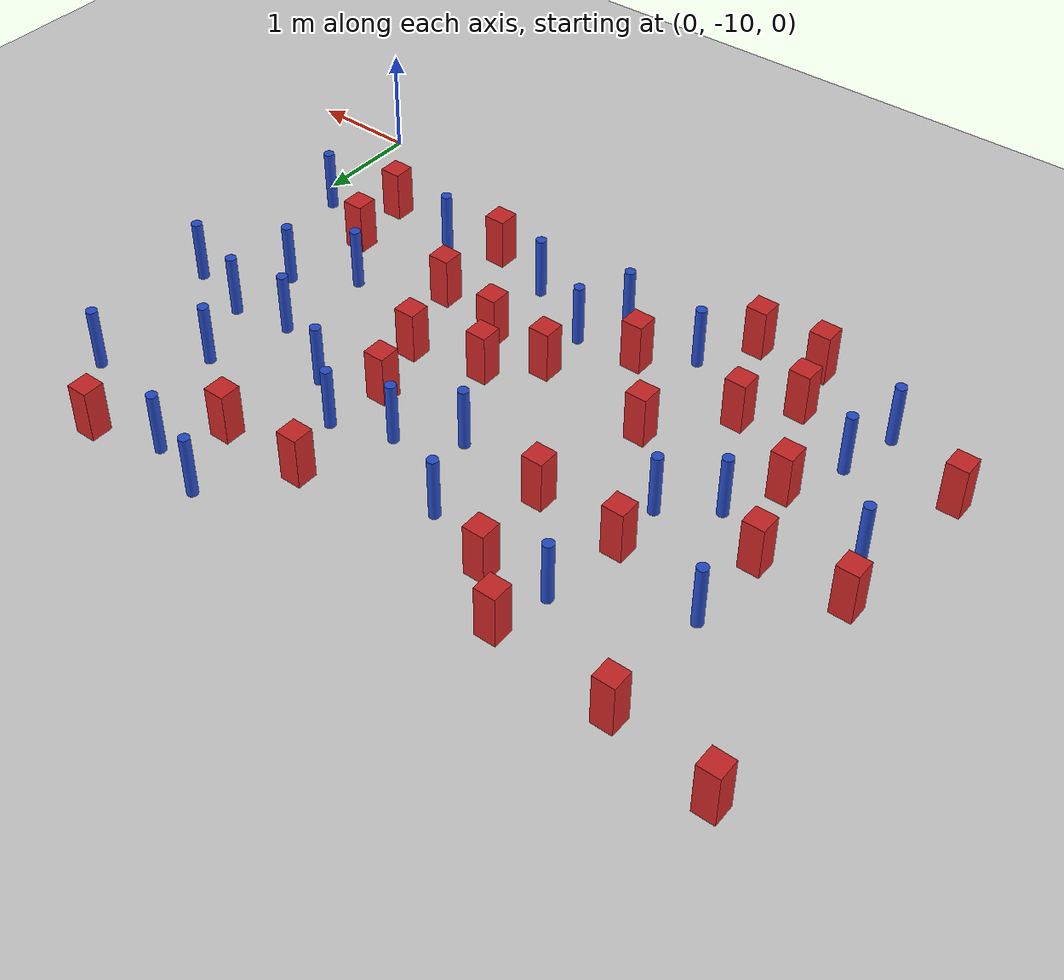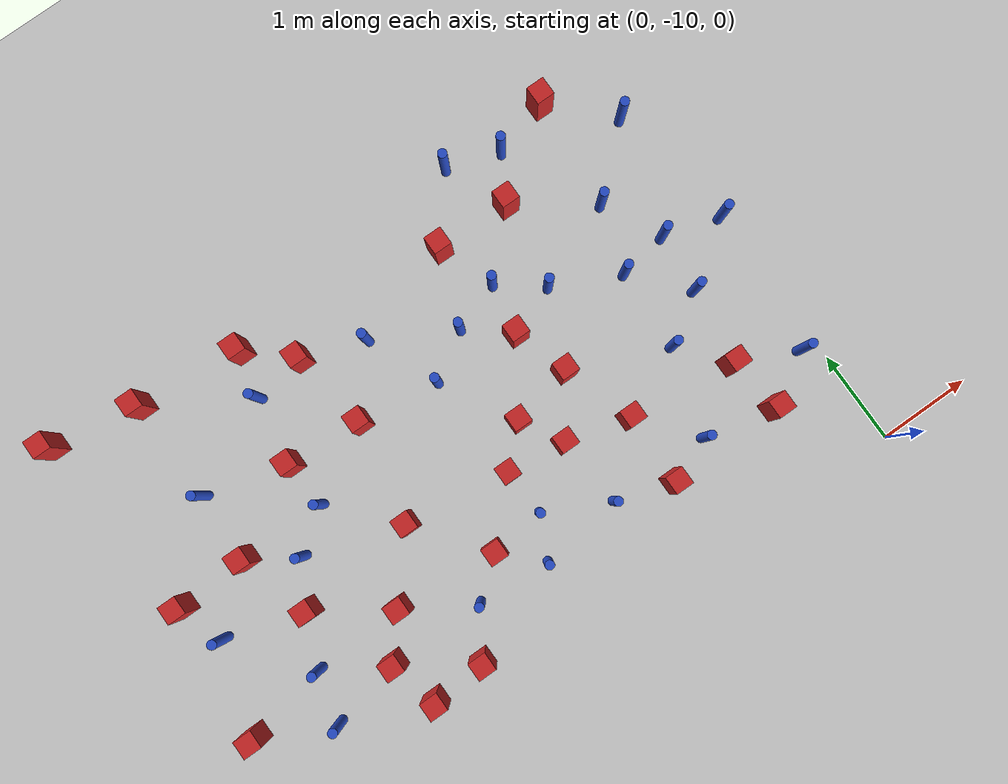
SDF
<sdf version="1.6">
 <world name="default">
  <model name="ground_plane">
   <static>1</static>
   <link name="link">
    <collision name="collision">
     <geometry><plane><normal>0 0 1</normal><size>100 100</size></plane></geometry>
     <surface><friction><ode><mu>100</mu><mu2>50</mu2></ode></friction></surface>
    </collision>
    <visual name="visual">
     <cast_shadows>0</cast_shadows>
     <geometry><plane><normal>0 0 1</normal><size>100 100</size></plane></geometry>
     <material>
      <ambient>1.0 1.0 1.0 1.0</ambient>
      <diffuse>0.8 0.8 0.8 1.0</diffuse>
      <specular>0.01 0.01 0.01 1.000000</specular>
     </material>
    </visual>
   </link>
  </model>
  <model name="square_post_obstacle6">
   <static>true</static>
   <pose>-0.892551065404 -5.12776510579 -7.80171244635e-07 7.17449752808e-06 -5.6639232126e-07 2.2715510512e-05</pose>
   <link name="link">
    <pose>0 0 0.25 0 -0 0</pose>
    <inertial>
     <mass>100</mass>
     <inertia>
      <ixx>0.166667</ixx>
      <ixy>0</ixy>
      <ixz>0</ixz>
      <iyy>0.166667</iyy>
      <iyz>0</iyz>
      <izz>0.166667</izz>
     </inertia>
    </inertial>
    <collision name="collision"><geometry><box><size>.2 .2 .5</size></box></geometry></collision>
    <visual name="visual">
     <geometry><box><size>.2 .2 .5</size></box></geometry>
     <material>
      <script><name>Gazebo/Red</name><uri>file://media/materials/scripts/gazebo.material</uri></script>
     </material>
    </visual>
   </link>
  </model>
  <model name="square_post_obstacle12">
   <static>true</static>
   <pose>-5.03160968618 -8.5285034943 -7.80171244635e-07 7.17449752808e-06 -5.6639232126e-07 2.2715510512e-05</pose>
   <link name="link">
    <pose>0 0 0.25 0 -0 0</pose>
    <inertial>
     <mass>100</mass>
     <inertia>
      <ixx>0.166667</ixx>
      <ixy>0</ixy>
      <ixz>0</ixz>
      <iyy>0.166667</iyy>
      <iyz>0</iyz>
      <izz>0.166667</izz>
     </inertia>
    </inertial>
    <collision name="collision"><geometry><box><size>.2 .2 .5</size></box></geometry></collision>
    <visual name="visual">
     <geometry><box><size>.2 .2 .5</size></box></geometry>
     <material>
      <script><name>Gazebo/Red</name><uri>file://media/materials/scripts/gazebo.material</uri></script>
     </material>
    </visual>
   </link>
  </model>
  <model name="pole_obstacle17">
   <static>true</static>
   <pose>-0.99536716631 -6.35708189024 -2.66029137441e-07 -5.69430205631e-07 6.84129966562e-07 -8.68349370782e-08</pose>
   <link name="link">
    <pose>0 0 0.3 0 -0 0</pose>
    <inertial>
     <mass>1</mass>
     <inertia><ixx>0.145833</ixx><ixy>0</ixy><ixz>0</ixz><iyy>0.145833</iyy><iyz>0</iyz><izz>0.125</izz></inertia>
    </inertial>
    <collision name="collision">
     <geometry><cylinder><radius>0.05</radius><length>.6</length></cylinder></geometry>
    </collision>
    <visual name="visual">
     <geometry><cylinder><radius>0.05</radius><length>.6</length></cylinder></geometry>
     <material>
      <script><name>Gazebo/Blue</name><uri>file://media/materials/scripts/gazebo.material</uri></script>
     </material>
    </visual>
   </link>
  </model>
  <model name="pole_obstacle19">
   <static>true</static>
   <pose>-2.92377861758 -6.58362115636 -2.66029137441e-07 -5.69430205635e-07 6.84129966557e-07 -8.68349370832e-08</pose>
   <link name="link">
    <pose>0 0 0.3 0 -0 0</pose>
    <inertial>
     <mass>1</mass>
     <inertia><ixx>0.145833</ixx><ixy>0</ixy><ixz>0</ixz><iyy>0.145833</iyy><iyz>0</iyz><izz>0.125</izz></inertia>
    </inertial>
    <collision name="collision">
     <geometry><cylinder><radius>0.05</radius><length>.6</length></cylinder></geometry>
    </collision>
    <visual name="visual">
     <geometry><cylinder><radius>0.05</radius><length>.6</length></cylinder></geometry>
     <material>
      <script><name>Gazebo/Blue</name><uri>file://media/materials/scripts/gazebo.material</uri></script>
     </material>
    </visual>
   </link>
  </model>
  <model name="pole_obstacle24">
   <static>true</static>
   <pose>-1.506349523 -5.30545802994 -2.66029137441e-07 -5.69430205635e-07 6.84129966557e-07 -8.68349370822e-08</pose>
   <link name="link">
    <pose>0 0 0.3 0 -0 0</pose>
    <inertial>
     <mass>1</mass>
     <inertia><ixx>0.145833</ixx><ixy>0</ixy><ixz>0</ixz><iyy>0.145833</iyy><iyz>0</iyz><izz>0.125</izz></inertia>
    </inertial>
    <collision name="collision">
     <geometry><cylinder><radius>0.05</radius><length>.6</length></cylinder></geometry>
    </collision>
    <visual name="visual">
     <geometry><cylinder><radius>0.05</radius><length>.6</length></cylinder></geometry>
     <material>
      <script><name>Gazebo/Blue</name><uri>file://media/materials/scripts/gazebo.material</uri></script>
     </material>
    </visual>
   </link>
  </model>
  <model name="pole_obstacle27">
   <static>true</static>
   <pose>-6.00216226382 -6.47632057488 -2.66029137441e-07 -5.69430205655e-07 6.84129966534e-07 -8.68349370984e-08</pose>
   <link name="link">
    <pose>0 0 0.3 0 -0 0</pose>
    <inertial>
     <mass>1</mass>
     <inertia><ixx>0.145833</ixx><ixy>0</ixy><ixz>0</ixz><iyy>0.145833</iyy><iyz>0</iyz><izz>0.125</izz></inertia>
    </inertial>
    <collision name="collision">
     <geometry><cylinder><radius>0.05</radius><length>.6</length></cylinder></geometry>
    </collision>
    <visual name="visual">
     <geometry><cylinder><radius>0.05</radius><length>.6</length></cylinder></geometry>
     <material>
      <script><name>Gazebo/Blue</name><uri>file://media/materials/scripts/gazebo.material</uri></script>
     </material>
    </visual>
   </link>
  </model>
  <model name="pole_obstacle31">
   <static>true</static>
   <pose>-6.02725252397 -8.57131569261 -2.66029137441e-07 -5.69430205631e-07 6.84129966561e-07 -8.68349370782e-08</pose>
   <link name="link">
    <pose>0 0 0.3 0 -0 0</pose>
    <inertial>
     <mass>1</mass>
     <inertia><ixx>0.145833</ixx><ixy>0</ixy><ixz>0</ixz><iyy>0.145833</iyy><iyz>0</iyz><izz>0.125</izz></inertia>
    </inertial>
    <collision name="collision">
     <geometry><cylinder><radius>0.05</radius><length>.6</length></cylinder></geometry>
    </collision>
    <visual name="visual">
     <geometry><cylinder><radius>0.05</radius><length>.6</length></cylinder></geometry>
     <material>
      <script><name>Gazebo/Blue</name><uri>file://media/materials/scripts/gazebo.material</uri></script>
     </material>
    </visual>
   </link>
  </model>
  <model name="square_post_obstacle32">
   <static>true</static>
   <pose>-2.97987950693 -7.68549002406 -7.80171244635e-07 7.17449752808e-06 -5.6639232126e-07 2.2715510512e-05</pose>
   <link name="link">
    <pose>0 0 0.25 0 -0 0</pose>
    <inertial>
     <mass>100</mass>
     <inertia>
      <ixx>0.166667</ixx>
      <ixy>0</ixy>
      <ixz>0</ixz>
      <iyy>0.166667</iyy>
      <iyz>0</iyz>
      <izz>0.166667</izz>
     </inertia>
    </inertial>
    <collision name="collision"><geometry><box><size>.2 .2 .5</size></box></geometry></collision>
    <visual name="visual">
     <geometry><box><size>.2 .2 .5</size></box></geometry>
     <material>
      <script><name>Gazebo/Red</name><uri>file://media/materials/scripts/gazebo.material</uri></script>
     </material>
    </visual>
   </link>
  </model>
  <model name="square_post_obstacle38">
   <static>true</static>
   <pose>-4.65949218197 -9.44560299457 -7.80171244635e-07 7.17449752808e-06 -5.6639232126e-07 2.2715510512e-05</pose>
   <link name="link">
    <pose>0 0 0.25 0 -0 0</pose>
    <inertial>
     <mass>100</mass>
     <inertia>
      <ixx>0.166667</ixx>
      <ixy>0</ixy>
      <ixz>0</ixz>
      <iyy>0.166667</iyy>
      <iyz>0</iyz>
      <izz>0.166667</izz>
     </inertia>
    </inertial>
    <collision name="collision"><geometry><box><size>.2 .2 .5</size></box></geometry></collision>
    <visual name="visual">
     <geometry><box><size>.2 .2 .5</size></box></geometry>
     <material>
      <script><name>Gazebo/Red</name><uri>file://media/materials/scripts/gazebo.material</uri></script>
     </material>
    </visual>
   </link>
  </model>
  <model name="pole_obstacle53">
   <static>true</static>
   <pose>-1.22295809897 -7.08439162451 -2.66029137441e-07 -5.69430205635e-07 6.84129966557e-07 -8.68349370822e-08</pose>
   <link name="link">
    <pose>0 0 0.3 0 -0 0</pose>
    <inertial>
     <mass>1</mass>
     <inertia><ixx>0.145833</ixx><ixy>0</ixy><ixz>0</ixz><iyy>0.145833</iyy><iyz>0</iyz><izz>0.125</izz></inertia>
    </inertial>
    <collision name="collision">
     <geometry><cylinder><radius>0.05</radius><length>.6</length></cylinder></geometry>
    </collision>
    <visual name="visual">
     <geometry><cylinder><radius>0.05</radius><length>.6</length></cylinder></geometry>
     <material>
      <script><name>Gazebo/Blue</name><uri>file://media/materials/scripts/gazebo.material</uri></script>
     </material>
    </visual>
   </link>
  </model>
  <model name="square_post_obstacle41">
   <static>true</static>
   <pose>-0.787192117923 -9.07926976653 -7.80171244635e-07 7.17449752808e-06 -5.6639232126e-07 2.2715510512e-05</pose>
   <link name="link">
    <pose>0 0 0.25 0 -0 0</pose>
    <inertial>
     <mass>100</mass>
     <inertia>
      <ixx>0.166667</ixx>
      <ixy>0</ixy>
      <ixz>0</ixz>
      <iyy>0.166667</iyy>
      <iyz>0</iyz>
      <izz>0.166667</izz>
     </inertia>
    </inertial>
    <collision name="collision"><geometry><box><size>.2 .2 .5</size></box></geometry></collision>
    <visual name="visual">
     <geometry><box><size>.2 .2 .5</size></box></geometry>
     <material>
      <script><name>Gazebo/Red</name><uri>file://media/materials/scripts/gazebo.material</uri></script>
     </material>
    </visual>
   </link>
  </model>
  <model name="square_post_obstacle47">
   <static>true</static>
   <pose>-4.87897362202 -5.46848041458 -7.80171244635e-07 7.17449752808e-06 -5.6639232126e-07 2.2715510512e-05</pose>
   <link name="link">
    <pose>0 0 0.25 0 -0 0</pose>
    <inertial>
     <mass>100</mass>
     <inertia>
      <ixx>0.166667</ixx>
      <ixy>0</ixy>
      <ixz>0</ixz>
      <iyy>0.166667</iyy>
      <iyz>0</iyz>
      <izz>0.166667</izz>
     </inertia>
    </inertial>
    <collision name="collision"><geometry><box><size>.2 .2 .5</size></box></geometry></collision>
    <visual name="visual">
     <geometry><box><size>.2 .2 .5</size></box></geometry>
     <material>
      <script><name>Gazebo/Red</name><uri>file://media/materials/scripts/gazebo.material</uri></script>
     </material>
    </visual>
   </link>
  </model>
  <model name="pole_obstacle63">
   <static>true</static>
   <pose>-0.73982863189 -7.63956374797 -2.66029137441e-07 -5.69430205631e-07 6.84129966561e-07 -8.68349370784e-08</pose>
   <link name="link">
    <pose>0 0 0.3 0 -0 0</pose>
    <inertial>
     <mass>1</mass>
     <inertia><ixx>0.145833</ixx><ixy>0</ixy><ixz>0</ixz><iyy>0.145833</iyy><iyz>0</iyz><izz>0.125</izz></inertia>
    </inertial>
    <collision name="collision">
     <geometry><cylinder><radius>0.05</radius><length>.6</length></cylinder></geometry>
    </collision>
    <visual name="visual">
     <geometry><cylinder><radius>0.05</radius><length>.6</length></cylinder></geometry>
     <material>
      <script><name>Gazebo/Blue</name><uri>file://media/materials/scripts/gazebo.material</uri></script>
     </material>
    </visual>
   </link>
  </model>
  <model name="square_post_obstacle51">
   <static>true</static>
   <pose>-6.01812347917 -5.34823765542 -7.80171244635e-07 7.17449752808e-06 -5.6639232126e-07 2.2715510512e-05</pose>
   <link name="link">
    <pose>0 0 0.25 0 -0 0</pose>
    <inertial>
     <mass>100</mass>
     <inertia>
      <ixx>0.166667</ixx>
      <ixy>0</ixy>
      <ixz>0</ixz>
      <iyy>0.166667</iyy>
      <iyz>0</iyz>
      <izz>0.166667</izz>
     </inertia>
    </inertial>
    <collision name="collision"><geometry><box><size>.2 .2 .5</size></box></geometry></collision>
    <visual name="visual">
     <geometry><box><size>.2 .2 .5</size></box></geometry>
     <material>
      <script><name>Gazebo/Red</name><uri>file://media/materials/scripts/gazebo.material</uri></script>
     </material>
    </visual>
   </link>
  </model>
  <model name="pole_obstacle70">
   <static>true</static>
   <pose>-6.63193695774 -7.77166325654 -2.66029137441e-07 -5.69430205655e-07 6.84129966534e-07 -8.68349370984e-08</pose>
   <link name="link">
    <pose>0 0 0.3 0 -0 0</pose>
    <inertial>
     <mass>1</mass>
     <inertia><ixx>0.145833</ixx><ixy>0</ixy><ixz>0</ixz><iyy>0.145833</iyy><iyz>0</iyz><izz>0.125</izz></inertia>
    </inertial>
    <collision name="collision">
     <geometry><cylinder><radius>0.05</radius><length>.6</length></cylinder></geometry>
    </collision>
    <visual name="visual">
     <geometry><cylinder><radius>0.05</radius><length>.6</length></cylinder></geometry>
     <material>
      <script><name>Gazebo/Blue</name><uri>file://media/materials/scripts/gazebo.material</uri></script>
     </material>
    </visual>
   </link>
  </model>
  <model name="pole_obstacle88">
   <static>true</static>
   <pose>-1.93919792497 -6.74394317222 -2.66029137441e-07 -5.69430205635e-07 6.84129966557e-07 -8.68349370822e-08</pose>
   <link name="link">
    <pose>0 0 0.3 0 -0 0</pose>
    <inertial>
     <mass>1</mass>
     <inertia><ixx>0.145833</ixx><ixy>0</ixy><ixz>0</ixz><iyy>0.145833</iyy><iyz>0</iyz><izz>0.125</izz></inertia>
    </inertial>
    <collision name="collision">
     <geometry><cylinder><radius>0.05</radius><length>.6</length></cylinder></geometry>
    </collision>
    <visual name="visual">
     <geometry><cylinder><radius>0.05</radius><length>.6</length></cylinder></geometry>
     <material>
      <script><name>Gazebo/Blue</name><uri>file://media/materials/scripts/gazebo.material</uri></script>
     </material>
    </visual>
   </link>
  </model>
  <model name="square_post_obstacle86">
   <static>true</static>
   <pose>-2.61346355211 -5.78104796479 -7.80171244635e-07 7.17449752808e-06 -5.6639232126e-07 2.2715510512e-05</pose>
   <link name="link">
    <pose>0 0 0.25 0 -0 0</pose>
    <inertial>
     <mass>100</mass>
     <inertia>
      <ixx>0.166667</ixx>
      <ixy>0</ixy>
      <ixz>0</ixz>
      <iyy>0.166667</iyy>
      <iyz>0</iyz>
      <izz>0.166667</izz>
     </inertia>
    </inertial>
    <collision name="collision"><geometry><box><size>.2 .2 .5</size></box></geometry></collision>
    <visual name="visual">
     <geometry><box><size>.2 .2 .5</size></box></geometry>
     <material>
      <script><name>Gazebo/Red</name><uri>file://media/materials/scripts/gazebo.material</uri></script>
     </material>
    </visual>
   </link>
  </model>
  <model name="pole_obstacle94">
   <static>true</static>
   <pose>-1.55042368952 -8.91501901694 -2.66029137441e-07 -5.69430205648e-07 6.84129966543e-07 -8.68349370925e-08</pose>
   <link name="link">
    <pose>0 0 0.3 0 -0 0</pose>
    <inertial>
     <mass>1</mass>
     <inertia><ixx>0.145833</ixx><ixy>0</ixy><ixz>0</ixz><iyy>0.145833</iyy><iyz>0</iyz><izz>0.125</izz></inertia>
    </inertial>
    <collision name="collision">
     <geometry><cylinder><radius>0.05</radius><length>.6</length></cylinder></geometry>
    </collision>
    <visual name="visual">
     <geometry><cylinder><radius>0.05</radius><length>.6</length></cylinder></geometry>
     <material>
      <script><name>Gazebo/Blue</name><uri>file://media/materials/scripts/gazebo.material</uri></script>
     </material>
    </visual>
   </link>
  </model>
  <model name="pole_obstacle99">
   <static>true</static>
   <pose>-0.681386303475 -6.99507097233 -2.66029137441e-07 -5.69430205631e-07 6.84129966561e-07 -8.68349370784e-08</pose>
   <link name="link">
    <pose>0 0 0.3 0 -0 0</pose>
    <inertial>
     <mass>1</mass>
     <inertia><ixx>0.145833</ixx><ixy>0</ixy><ixz>0</ixz><iyy>0.145833</iyy><iyz>0</iyz><izz>0.125</izz></inertia>
    </inertial>
    <collision name="collision">
     <geometry><cylinder><radius>0.05</radius><length>.6</length></cylinder></geometry>
    </collision>
    <visual name="visual">
     <geometry><cylinder><radius>0.05</radius><length>.6</length></cylinder></geometry>
     <material>
      <script><name>Gazebo/Blue</name><uri>file://media/materials/scripts/gazebo.material</uri></script>
     </material>
    </visual>
   </link>
  </model>
  <model name="pole_obstacle101">
   <static>true</static>
   <pose>-4.99247817015 -5.97687123093 -2.66029137441e-07 -5.69430205655e-07 6.84129966534e-07 -8.68349370984e-08</pose>
   <link name="link">
    <pose>0 0 0.3 0 -0 0</pose>
    <inertial>
     <mass>1</mass>
     <inertia><ixx>0.145833</ixx><ixy>0</ixy><ixz>0</ixz><iyy>0.145833</iyy><iyz>0</iyz><izz>0.125</izz></inertia>
    </inertial>
    <collision name="collision">
     <geometry><cylinder><radius>0.05</radius><length>.6</length></cylinder></geometry>
    </collision>
    <visual name="visual">
     <geometry><cylinder><radius>0.05</radius><length>.6</length></cylinder></geometry>
     <material>
      <script><name>Gazebo/Blue</name><uri>file://media/materials/scripts/gazebo.material</uri></script>
     </material>
    </visual>
   </link>
  </model>
  <model name="square_post_obstacle94">
   <static>true</static>
   <pose>-6.02123757703 -7.23509052723 -7.80171244635e-07 7.17449752808e-06 -5.6639232126e-07 2.2715510512e-05</pose>
   <link name="link">
    <pose>0 0 0.25 0 -0 0</pose>
    <inertial>
     <mass>100</mass>
     <inertia>
      <ixx>0.166667</ixx>
      <ixy>0</ixy>
      <ixz>0</ixz>
      <iyy>0.166667</iyy>
      <iyz>0</iyz>
      <izz>0.166667</izz>
     </inertia>
    </inertial>
    <collision name="collision"><geometry><box><size>.2 .2 .5</size></box></geometry></collision>
    <visual name="visual">
     <geometry><box><size>.2 .2 .5</size></box></geometry>
     <material>
      <script><name>Gazebo/Red</name><uri>file://media/materials/scripts/gazebo.material</uri></script>
     </material>
    </visual>
   </link>
  </model>
  <model name="square_post_obstacle98">
   <static>true</static>
   <pose>-5.10861858658 -6.71432510198 -7.80171244635e-07 7.17449752808e-06 -5.6639232126e-07 2.2715510512e-05</pose>
   <link name="link">
    <pose>0 0 0.25 0 -0 0</pose>
    <inertial>
     <mass>100</mass>
     <inertia>
      <ixx>0.166667</ixx>
      <ixy>0</ixy>
      <ixz>0</ixz>
      <iyy>0.166667</iyy>
      <iyz>0</iyz>
      <izz>0.166667</izz>
     </inertia>
    </inertial>
    <collision name="collision"><geometry><box><size>.2 .2 .5</size></box></geometry></collision>
    <visual name="visual">
     <geometry><box><size>.2 .2 .5</size></box></geometry>
     <material>
      <script><name>Gazebo/Red</name><uri>file://media/materials/scripts/gazebo.material</uri></script>
     </material>
    </visual>
   </link>
  </model>
  <model name="square_post_obstacle100">
   <static>true</static>
   <pose>-2.30585869313 -7.54289406415 -7.80171244635e-07 7.17449752808e-06 -5.6639232126e-07 2.2715510512e-05</pose>
   <link name="link">
    <pose>0 0 0.25 0 -0 0</pose>
    <inertial>
     <mass>100</mass>
     <inertia>
      <ixx>0.166667</ixx>
      <ixy>0</ixy>
      <ixz>0</ixz>
      <iyy>0.166667</iyy>
      <iyz>0</iyz>
      <izz>0.166667</izz>
     </inertia>
    </inertial>
    <collision name="collision"><geometry><box><size>.2 .2 .5</size></box></geometry></collision>
    <visual name="visual">
     <geometry><box><size>.2 .2 .5</size></box></geometry>
     <material>
      <script><name>Gazebo/Red</name><uri>file://media/materials/scripts/gazebo.material</uri></script>
     </material>
    </visual>
   </link>
  </model>
  <model name="square_post_obstacle104">
   <static>true</static>
   <pose>-6.91826496826 -8.74671922974 -7.80171244635e-07 7.17449752808e-06 -5.6639232126e-07 2.2715510512e-05</pose>
   <link name="link">
    <pose>0 0 0.25 0 -0 0</pose>
    <inertial>
     <mass>100</mass>
     <inertia>
      <ixx>0.166667</ixx>
      <ixy>0</ixy>
      <ixz>0</ixz>
      <iyy>0.166667</iyy>
      <iyz>0</iyz>
      <izz>0.166667</izz>
     </inertia>
    </inertial>
    <collision name="collision"><geometry><box><size>.2 .2 .5</size></box></geometry></collision>
    <visual name="visual">
     <geometry><box><size>.2 .2 .5</size></box></geometry>
     <material>
      <script><name>Gazebo/Red</name><uri>file://media/materials/scripts/gazebo.material</uri></script>
     </material>
    </visual>
   </link>
  </model>
  <model name="pole_obstacle112">
   <static>true</static>
   <pose>-3.3425457024 -8.56787684628 -2.66029137497e-07 -5.69430205676e-07 6.84129966501e-07 -8.6834937112e-08</pose>
   <link name="link">
    <pose>0 0 0.3 0 -0 0</pose>
    <inertial>
     <mass>1</mass>
     <inertia><ixx>0.145833</ixx><ixy>0</ixy><ixz>0</ixz><iyy>0.145833</iyy><iyz>0</iyz><izz>0.125</izz></inertia>
    </inertial>
    <collision name="collision">
     <geometry><cylinder><radius>0.05</radius><length>.6</length></cylinder></geometry>
    </collision>
    <visual name="visual">
     <geometry><cylinder><radius>0.05</radius><length>.6</length></cylinder></geometry>
     <material>
      <script><name>Gazebo/Blue</name><uri>file://media/materials/scripts/gazebo.material</uri></script>
     </material>
    </visual>
   </link>
  </model>
  <model name="pole_obstacle114">
   <static>true</static>
   <pose>-3.7576650608 -6.1273535212 -2.66029137441e-07 -5.69430205635e-07 6.84129966557e-07 -8.68349370832e-08</pose>
   <link name="link">
    <pose>0 0 0.3 0 -0 0</pose>
    <inertial>
     <mass>1</mass>
     <inertia><ixx>0.145833</ixx><ixy>0</ixy><ixz>0</ixz><iyy>0.145833</iyy><iyz>0</iyz><izz>0.125</izz></inertia>
    </inertial>
    <collision name="collision">
     <geometry><cylinder><radius>0.05</radius><length>.6</length></cylinder></geometry>
    </collision>
    <visual name="visual">
     <geometry><cylinder><radius>0.05</radius><length>.6</length></cylinder></geometry>
     <material>
      <script><name>Gazebo/Blue</name><uri>file://media/materials/scripts/gazebo.material</uri></script>
     </material>
    </visual>
   </link>
  </model>
  <model name="square_post_obstacle111">
   <static>true</static>
   <pose>-5.786601143 -8.02017476406 -7.80171244635e-07 7.17449752808e-06 -5.6639232126e-07 2.2715510512e-05</pose>
   <link name="link">
    <pose>0 0 0.25 0 -0 0</pose>
    <inertial>
     <mass>100</mass>
     <inertia>
      <ixx>0.166667</ixx>
      <ixy>0</ixy>
      <ixz>0</ixz>
      <iyy>0.166667</iyy>
      <iyz>0</iyz>
      <izz>0.166667</izz>
     </inertia>
    </inertial>
    <collision name="collision"><geometry><box><size>.2 .2 .5</size></box></geometry></collision>
    <visual name="visual">
     <geometry><box><size>.2 .2 .5</size></box></geometry>
     <material>
      <script><name>Gazebo/Red</name><uri>file://media/materials/scripts/gazebo.material</uri></script>
     </material>
    </visual>
   </link>
  </model>
  <model name="square_post_obstacle120">
   <static>true</static>
   <pose>-1.79011665815 -5.79025762806 -7.80171244635e-07 7.17449752808e-06 -5.6639232126e-07 2.2715510512e-05</pose>
   <link name="link">
    <pose>0 0 0.25 0 -0 0</pose>
    <inertial>
     <mass>100</mass>
     <inertia>
      <ixx>0.166667</ixx>
      <ixy>0</ixy>
      <ixz>0</ixz>
      <iyy>0.166667</iyy>
      <iyz>0</iyz>
      <izz>0.166667</izz>
     </inertia>
    </inertial>
    <collision name="collision"><geometry><box><size>.2 .2 .5</size></box></geometry></collision>
    <visual name="visual">
     <geometry><box><size>.2 .2 .5</size></box></geometry>
     <material>
      <script><name>Gazebo/Red</name><uri>file://media/materials/scripts/gazebo.material</uri></script>
     </material>
    </visual>
   </link>
  </model>
  <model name="pole_obstacle125">
   <static>true</static>
   <pose>-6.16055994624 -9.12003968109 -2.66029137441e-07 -5.69430205631e-07 6.84129966561e-07 -8.68349370782e-08</pose>
   <link name="link">
    <pose>0 0 0.3 0 -0 0</pose>
    <inertial>
     <mass>1</mass>
     <inertia><ixx>0.145833</ixx><ixy>0</ixy><ixz>0</ixz><iyy>0.145833</iyy><iyz>0</iyz><izz>0.125</izz></inertia>
    </inertial>
    <collision name="collision">
     <geometry><cylinder><radius>0.05</radius><length>.6</length></cylinder></geometry>
    </collision>
    <visual name="visual">
     <geometry><cylinder><radius>0.05</radius><length>.6</length></cylinder></geometry>
     <material>
      <script><name>Gazebo/Blue</name><uri>file://media/materials/scripts/gazebo.material</uri></script>
     </material>
    </visual>
   </link>
  </model>
  <model name="pole_obstacle127">
   <static>true</static>
   <pose>-1.26788587848 -7.97538428473 -2.66029137441e-07 -5.69430205641e-07 6.8412996655e-07 -8.68349370876e-08</pose>
   <link name="link">
    <pose>0 0 0.3 0 -0 0</pose>
    <inertial>
     <mass>1</mass>
     <inertia><ixx>0.145833</ixx><ixy>0</ixy><ixz>0</ixz><iyy>0.145833</iyy><iyz>0</iyz><izz>0.125</izz></inertia>
    </inertial>
    <collision name="collision">
     <geometry><cylinder><radius>0.05</radius><length>.6</length></cylinder></geometry>
    </collision>
    <visual name="visual">
     <geometry><cylinder><radius>0.05</radius><length>.6</length></cylinder></geometry>
     <material>
      <script><name>Gazebo/Blue</name><uri>file://media/materials/scripts/gazebo.material</uri></script>
     </material>
    </visual>
   </link>
  </model>
  <model name="square_post_obstacle132">
   <static>true</static>
   <pose>-2.0526497492 -9.09608417274 -7.80171244635e-07 7.17449752808e-06 -5.6639232126e-07 2.2715510512e-05</pose>
   <link name="link">
    <pose>0 0 0.25 0 -0 0</pose>
    <inertial>
     <mass>100</mass>
     <inertia>
      <ixx>0.166667</ixx>
      <ixy>0</ixy>
      <ixz>0</ixz>
      <iyy>0.166667</iyy>
      <iyz>0</iyz>
      <izz>0.166667</izz>
     </inertia>
    </inertial>
    <collision name="collision"><geometry><box><size>.2 .2 .5</size></box></geometry></collision>
    <visual name="visual">
     <geometry><box><size>.2 .2 .5</size></box></geometry>
     <material>
      <script><name>Gazebo/Red</name><uri>file://media/materials/scripts/gazebo.material</uri></script>
     </material>
    </visual>
   </link>
  </model>
  <model name="pole_obstacle133">
   <static>true</static>
   <pose>-5.08741957605 -7.23114993309 -2.66029137441e-07 -5.69430205655e-07 6.84129966534e-07 -8.68349370984e-08</pose>
   <link name="link">
    <pose>0 0 0.3 0 -0 0</pose>
    <inertial>
     <mass>1</mass>
     <inertia><ixx>0.145833</ixx><ixy>0</ixy><ixz>0</ixz><iyy>0.145833</iyy><iyz>0</iyz><izz>0.125</izz></inertia>
    </inertial>
    <collision name="collision">
     <geometry><cylinder><radius>0.05</radius><length>.6</length></cylinder></geometry>
    </collision>
    <visual name="visual">
     <geometry><cylinder><radius>0.05</radius><length>.6</length></cylinder></geometry>
     <material>
      <script><name>Gazebo/Blue</name><uri>file://media/materials/scripts/gazebo.material</uri></script>
     </material>
    </visual>
   </link>
  </model>
  <model name="square_post_obstacle133">
   <static>true</static>
   <pose>-0.868876964543 -8.46104072687 -7.80171244635e-07 7.17449752808e-06 -5.6639232126e-07 2.2715510512e-05</pose>
   <link name="link">
    <pose>0 0 0.25 0 -0 0</pose>
    <inertial>
     <mass>100</mass>
     <inertia>
      <ixx>0.166667</ixx>
      <ixy>0</ixy>
      <ixz>0</ixz>
      <iyy>0.166667</iyy>
      <iyz>0</iyz>
      <izz>0.166667</izz>
     </inertia>
    </inertial>
    <collision name="collision"><geometry><box><size>.2 .2 .5</size></box></geometry></collision>
    <visual name="visual">
     <geometry><box><size>.2 .2 .5</size></box></geometry>
     <material>
      <script><name>Gazebo/Red</name><uri>file://media/materials/scripts/gazebo.material</uri></script>
     </material>
    </visual>
   </link>
  </model>
  <model name="square_post_obstacle135">
   <static>true</static>
   <pose>-4.49277791946 -7.88696345822 -7.80171244635e-07 7.17449752808e-06 -5.6639232126e-07 2.2715510512e-05</pose>
   <link name="link">
    <pose>0 0 0.25 0 -0 0</pose>
    <inertial>
     <mass>100</mass>
     <inertia>
      <ixx>0.166667</ixx>
      <ixy>0</ixy>
      <ixz>0</ixz>
      <iyy>0.166667</iyy>
      <iyz>0</iyz>
      <izz>0.166667</izz>
     </inertia>
    </inertial>
    <collision name="collision"><geometry><box><size>.2 .2 .5</size></box></geometry></collision>
    <visual name="visual">
     <geometry><box><size>.2 .2 .5</size></box></geometry>
     <material>
      <script><name>Gazebo/Red</name><uri>file://media/materials/scripts/gazebo.material</uri></script>
     </material>
    </visual>
   </link>
  </model>
  <model name="square_post_obstacle138">
   <static>true</static>
   <pose>-6.98049084811 -5.17481912349 -7.80171244635e-07 7.17449752808e-06 -5.6639232126e-07 2.2715510512e-05</pose>
   <link name="link">
    <pose>0 0 0.25 0 -0 0</pose>
    <inertial>
     <mass>100</mass>
     <inertia>
      <ixx>0.166667</ixx>
      <ixy>0</ixy>
      <ixz>0</ixz>
      <iyy>0.166667</iyy>
      <iyz>0</iyz>
      <izz>0.166667</izz>
     </inertia>
    </inertial>
    <collision name="collision"><geometry><box><size>.2 .2 .5</size></box></geometry></collision>
    <visual name="visual">
     <geometry><box><size>.2 .2 .5</size></box></geometry>
     <material>
      <script><name>Gazebo/Red</name><uri>file://media/materials/scripts/gazebo.material</uri></script>
     </material>
    </visual>
   </link>
  </model>
  <model name="pole_obstacle148">
   <static>true</static>
   <pose>-2.66513509024 -8.91035009063 -2.66029137497e-07 -5.69430205676e-07 6.84129966501e-07 -8.6834937112e-08</pose>
   <link name="link">
    <pose>0 0 0.3 0 -0 0</pose>
    <inertial>
     <mass>1</mass>
     <inertia><ixx>0.145833</ixx><ixy>0</ixy><ixz>0</ixz><iyy>0.145833</iyy><iyz>0</iyz><izz>0.125</izz></inertia>
    </inertial>
    <collision name="collision">
     <geometry><cylinder><radius>0.05</radius><length>.6</length></cylinder></geometry>
    </collision>
    <visual name="visual">
     <geometry><cylinder><radius>0.05</radius><length>.6</length></cylinder></geometry>
     <material>
      <script><name>Gazebo/Blue</name><uri>file://media/materials/scripts/gazebo.material</uri></script>
     </material>
    </visual>
   </link>
  </model>
  <model name="square_post_obstacle152">
   <static>true</static>
   <pose>-4.29481579182 -6.77051412744 -7.80171244635e-07 7.17449752808e-06 -5.6639232126e-07 2.2715510512e-05</pose>
   <link name="link">
    <pose>0 0 0.25 0 -0 0</pose>
    <inertial>
     <mass>100</mass>
     <inertia>
      <ixx>0.166667</ixx>
      <ixy>0</ixy>
      <ixz>0</ixz>
      <iyy>0.166667</iyy>
      <iyz>0</iyz>
      <izz>0.166667</izz>
     </inertia>
    </inertial>
    <collision name="collision"><geometry><box><size>.2 .2 .5</size></box></geometry></collision>
    <visual name="visual">
     <geometry><box><size>.2 .2 .5</size></box></geometry>
     <material>
      <script><name>Gazebo/Red</name><uri>file://media/materials/scripts/gazebo.material</uri></script>
     </material>
    </visual>
   </link>
  </model>
  <model name="pole_obstacle163">
   <static>true</static>
   <pose>-2.08073475862 -5.11535379623 -2.66029137441e-07 -5.69430205635e-07 6.84129966557e-07 -8.68349370832e-08</pose>
   <link name="link">
    <pose>0 0 0.3 0 -0 0</pose>
    <inertial>
     <mass>1</mass>
     <inertia><ixx>0.145833</ixx><ixy>0</ixy><ixz>0</ixz><iyy>0.145833</iyy><iyz>0</iyz><izz>0.125</izz></inertia>
    </inertial>
    <collision name="collision">
     <geometry><cylinder><radius>0.05</radius><length>.6</length></cylinder></geometry>
    </collision>
    <visual name="visual">
     <geometry><cylinder><radius>0.05</radius><length>.6</length></cylinder></geometry>
     <material>
      <script><name>Gazebo/Blue</name><uri>file://media/materials/scripts/gazebo.material</uri></script>
     </material>
    </visual>
   </link>
  </model>
  <model name="square_post_obstacle158">
   <static>true</static>
   <pose>-2.03868630264 -8.31280237063 -7.80171244635e-07 7.17449752808e-06 -5.6639232126e-07 2.2715510512e-05</pose>
   <link name="link">
    <pose>0 0 0.25 0 -0 0</pose>
    <inertial>
     <mass>100</mass>
     <inertia>
      <ixx>0.166667</ixx>
      <ixy>0</ixy>
      <ixz>0</ixz>
      <iyy>0.166667</iyy>
      <iyz>0</iyz>
      <izz>0.166667</izz>
     </inertia>
    </inertial>
    <collision name="collision"><geometry><box><size>.2 .2 .5</size></box></geometry></collision>
    <visual name="visual">
     <geometry><box><size>.2 .2 .5</size></box></geometry>
     <material>
      <script><name>Gazebo/Red</name><uri>file://media/materials/scripts/gazebo.material</uri></script>
     </material>
    </visual>
   </link>
  </model>
  <model name="pole_obstacle165">
   <static>true</static>
   <pose>-0.0639717174687 -7.17253029422 -2.66029137441e-07 -5.69430205631e-07 6.84129966562e-07 -8.68349370802e-08</pose>
   <link name="link">
    <pose>0 0 0.3 0 -0 0</pose>
    <inertial>
     <mass>1</mass>
     <inertia><ixx>0.145833</ixx><ixy>0</ixy><ixz>0</ixz><iyy>0.145833</iyy><iyz>0</iyz><izz>0.125</izz></inertia>
    </inertial>
    <collision name="collision">
     <geometry><cylinder><radius>0.05</radius><length>.6</length></cylinder></geometry>
    </collision>
    <visual name="visual">
     <geometry><cylinder><radius>0.05</radius><length>.6</length></cylinder></geometry>
     <material>
      <script><name>Gazebo/Blue</name><uri>file://media/materials/scripts/gazebo.material</uri></script>
     </material>
    </visual>
   </link>
  </model>
  <model name="square_post_obstacle163">
   <static>true</static>
   <pose>-5.38647865115 -8.95033154622 -7.80171244635e-07 7.17449752808e-06 -5.6639232126e-07 2.2715510512e-05</pose>
   <link name="link">
    <pose>0 0 0.25 0 -0 0</pose>
    <inertial>
     <mass>100</mass>
     <inertia>
      <ixx>0.166667</ixx>
      <ixy>0</ixy>
      <ixz>0</ixz>
      <iyy>0.166667</iyy>
      <iyz>0</iyz>
      <izz>0.166667</izz>
     </inertia>
    </inertial>
    <collision name="collision"><geometry><box><size>.2 .2 .5</size></box></geometry></collision>
    <visual name="visual">
     <geometry><box><size>.2 .2 .5</size></box></geometry>
     <material>
      <script><name>Gazebo/Red</name><uri>file://media/materials/scripts/gazebo.material</uri></script>
     </material>
    </visual>
   </link>
  </model>
  <model name="square_post_obstacle164">
   <static>true</static>
   <pose>-3.93068762859 -8.62467420028 -7.80171244635e-07 7.17449752808e-06 -5.6639232126e-07 2.2715510512e-05</pose>
   <link name="link">
    <pose>0 0 0.25 0 -0 0</pose>
    <inertial>
     <mass>100</mass>
     <inertia>
      <ixx>0.166667</ixx>
      <ixy>0</ixy>
      <ixz>0</ixz>
      <iyy>0.166667</iyy>
      <iyz>0</iyz>
      <izz>0.166667</izz>
     </inertia>
    </inertial>
    <collision name="collision"><geometry><box><size>.2 .2 .5</size></box></geometry></collision>
    <visual name="visual">
     <geometry><box><size>.2 .2 .5</size></box></geometry>
     <material>
      <script><name>Gazebo/Red</name><uri>file://media/materials/scripts/gazebo.material</uri></script>
     </material>
    </visual>
   </link>
  </model>
  <model name="square_post_obstacle168">
   <static>true</static>
   <pose>-5.25871845924 -9.48935598227 -7.80171244635e-07 7.17449752808e-06 -5.6639232126e-07 2.2715510512e-05</pose>
   <link name="link">
    <pose>0 0 0.25 0 -0 0</pose>
    <inertial>
     <mass>100</mass>
     <inertia>
      <ixx>0.166667</ixx>
      <ixy>0</ixy>
      <ixz>0</ixz>
      <iyy>0.166667</iyy>
      <iyz>0</iyz>
      <izz>0.166667</izz>
     </inertia>
    </inertial>
    <collision name="collision"><geometry><box><size>.2 .2 .5</size></box></geometry></collision>
    <visual name="visual">
     <geometry><box><size>.2 .2 .5</size></box></geometry>
     <material>
      <script><name>Gazebo/Red</name><uri>file://media/materials/scripts/gazebo.material</uri></script>
     </material>
    </visual>
   </link>
  </model>
  <model name="square_post_obstacle177">
   <static>true</static>
   <pose>-2.48703066211 -6.94888337455 -7.80171244635e-07 7.17449752808e-06 -5.6639232126e-07 2.2715510512e-05</pose>
   <link name="link">
    <pose>0 0 0.25 0 -0 0</pose>
    <inertial>
     <mass>100</mass>
     <inertia>
      <ixx>0.166667</ixx>
      <ixy>0</ixy>
      <ixz>0</ixz>
      <iyy>0.166667</iyy>
      <iyz>0</iyz>
      <izz>0.166667</izz>
     </inertia>
    </inertial>
    <collision name="collision"><geometry><box><size>.2 .2 .5</size></box></geometry></collision>
    <visual name="visual">
     <geometry><box><size>.2 .2 .5</size></box></geometry>
     <material>
      <script><name>Gazebo/Red</name><uri>file://media/materials/scripts/gazebo.material</uri></script>
     </material>
    </visual>
   </link>
  </model>
  <model name="square_post_obstacle182">
   <static>true</static>
   <pose>-4.42783308158 -5.89036431221 -7.80171244635e-07 7.17449752808e-06 -5.6639232126e-07 2.2715510512e-05</pose>
   <link name="link">
    <pose>0 0 0.25 0 -0 0</pose>
    <inertial>
     <mass>100</mass>
     <inertia>
      <ixx>0.166667</ixx>
      <ixy>0</ixy>
      <ixz>0</ixz>
      <iyy>0.166667</iyy>
      <iyz>0</iyz>
      <izz>0.166667</izz>
     </inertia>
    </inertial>
    <collision name="collision"><geometry><box><size>.2 .2 .5</size></box></geometry></collision>
    <visual name="visual">
     <geometry><box><size>.2 .2 .5</size></box></geometry>
     <material>
      <script><name>Gazebo/Red</name><uri>file://media/materials/scripts/gazebo.material</uri></script>
     </material>
    </visual>
   </link>
  </model>
  <model name="square_post_obstacle189">
   <static>true</static>
   <pose>-3.36812149727 -8.05483927161 -7.80171244635e-07 7.17449752808e-06 -5.6639232126e-07 2.2715510512e-05</pose>
   <link name="link">
    <pose>0 0 0.25 0 -0 0</pose>
    <inertial>
     <mass>100</mass>
     <inertia>
      <ixx>0.166667</ixx>
      <ixy>0</ixy>
      <ixz>0</ixz>
      <iyy>0.166667</iyy>
      <iyz>0</iyz>
      <izz>0.166667</izz>
     </inertia>
    </inertial>
    <collision name="collision"><geometry><box><size>.2 .2 .5</size></box></geometry></collision>
    <visual name="visual">
     <geometry><box><size>.2 .2 .5</size></box></geometry>
     <material>
      <script><name>Gazebo/Red</name><uri>file://media/materials/scripts/gazebo.material</uri></script>
     </material>
    </visual>
   </link>
  </model>
  <model name="square_post_obstacle194">
   <static>true</static>
   <pose>-2.72713079377 -8.13261726587 -7.80171244635e-07 7.17449752808e-06 -5.6639232126e-07 2.2715510512e-05</pose>
   <link name="link">
    <pose>0 0 0.25 0 -0 0</pose>
    <inertial>
     <mass>100</mass>
     <inertia>
      <ixx>0.166667</ixx>
      <ixy>0</ixy>
      <ixz>0</ixz>
      <iyy>0.166667</iyy>
      <iyz>0</iyz>
      <izz>0.166667</izz>
     </inertia>
    </inertial>
    <collision name="collision"><geometry><box><size>.2 .2 .5</size></box></geometry></collision>
    <visual name="visual">
     <geometry><box><size>.2 .2 .5</size></box></geometry>
     <material>
      <script><name>Gazebo/Red</name><uri>file://media/materials/scripts/gazebo.material</uri></script>
     </material>
    </visual>
   </link>
  </model>
  <model name="square_post_obstacle204">
   <static>true</static>
   <pose>-6.80033750171 -7.26937107252 -7.80171244635e-07 7.17449752808e-06 -5.6639232126e-07 2.2715510512e-05</pose>
   <link name="link">
    <pose>0 0 0.25 0 -0 0</pose>
    <inertial>
     <mass>100</mass>
     <inertia>
      <ixx>0.166667</ixx>
      <ixy>0</ixy>
      <ixz>0</ixz>
      <iyy>0.166667</iyy>
      <iyz>0</iyz>
      <izz>0.166667</izz>
     </inertia>
    </inertial>
    <collision name="collision"><geometry><box><size>.2 .2 .5</size></box></geometry></collision>
    <visual name="visual">
     <geometry><box><size>.2 .2 .5</size></box></geometry>
     <material>
      <script><name>Gazebo/Red</name><uri>file://media/materials/scripts/gazebo.material</uri></script>
     </material>
    </visual>
   </link>
  </model>
  <model name="pole_obstacle193">
   <static>true</static>
   <pose>-0.214189771893 -8.76045162703 -2.66029137441e-07 -5.69430205656e-07 6.84129966533e-07 -8.68349371013e-08</pose>
   <link name="link">
    <pose>0 0 0.3 0 -0 0</pose>
    <inertial>
     <mass>1</mass>
     <inertia><ixx>0.145833</ixx><ixy>0</ixy><ixz>0</ixz><iyy>0.145833</iyy><iyz>0</iyz><izz>0.125</izz></inertia>
    </inertial>
    <collision name="collision">
     <geometry><cylinder><radius>0.05</radius><length>.6</length></cylinder></geometry>
    </collision>
    <visual name="visual">
     <geometry><cylinder><radius>0.05</radius><length>.6</length></cylinder></geometry>
     <material>
      <script><name>Gazebo/Blue</name><uri>file://media/materials/scripts/gazebo.material</uri></script>
     </material>
    </visual>
   </link>
  </model>
  <model name="pole_obstacle195">
   <static>true</static>
   <pose>-4.3451754652 -8.95972583725 -2.66029137441e-07 -5.69430205631e-07 6.84129966561e-07 -8.68349370782e-08</pose>
   <link name="link">
    <pose>0 0 0.3 0 -0 0</pose>
    <inertial>
     <mass>1</mass>
     <inertia><ixx>0.145833</ixx><ixy>0</ixy><ixz>0</ixz><iyy>0.145833</iyy><iyz>0</iyz><izz>0.125</izz></inertia>
    </inertial>
    <collision name="collision">
     <geometry><cylinder><radius>0.05</radius><length>.6</length></cylinder></geometry>
    </collision>
    <visual name="visual">
     <geometry><cylinder><radius>0.05</radius><length>.6</length></cylinder></geometry>
     <material>
      <script><name>Gazebo/Blue</name><uri>file://media/materials/scripts/gazebo.material</uri></script>
     </material>
    </visual>
   </link>
  </model>
  <model name="pole_obstacle196">
   <static>true</static>
   <pose>-0.294552977492 -5.73122219593 -2.66029137441e-07 -5.69430205631e-07 6.84129966562e-07 -8.68349370775e-08</pose>
   <link name="link">
    <pose>0 0 0.3 0 -0 0</pose>
    <inertial>
     <mass>1</mass>
     <inertia><ixx>0.145833</ixx><ixy>0</ixy><ixz>0</ixz><iyy>0.145833</iyy><iyz>0</iyz><izz>0.125</izz></inertia>
    </inertial>
    <collision name="collision">
     <geometry><cylinder><radius>0.05</radius><length>.6</length></cylinder></geometry>
    </collision>
    <visual name="visual">
     <geometry><cylinder><radius>0.05</radius><length>.6</length></cylinder></geometry>
     <material>
      <script><name>Gazebo/Blue</name><uri>file://media/materials/scripts/gazebo.material</uri></script>
     </material>
    </visual>
   </link>
  </model>
  <model name="pole_obstacle197">
   <static>true</static>
   <pose>-2.38860283651 -6.39495411822 -2.66029137441e-07 -5.69430205635e-07 6.84129966557e-07 -8.68349370832e-08</pose>
   <link name="link">
    <pose>0 0 0.3 0 -0 0</pose>
    <inertial>
     <mass>1</mass>
     <inertia><ixx>0.145833</ixx><ixy>0</ixy><ixz>0</ixz><iyy>0.145833</iyy><iyz>0</iyz><izz>0.125</izz></inertia>
    </inertial>
    <collision name="collision">
     <geometry><cylinder><radius>0.05</radius><length>.6</length></cylinder></geometry>
    </collision>
    <visual name="visual">
     <geometry><cylinder><radius>0.05</radius><length>.6</length></cylinder></geometry>
     <material>
      <script><name>Gazebo/Blue</name><uri>file://media/materials/scripts/gazebo.material</uri></script>
     </material>
    </visual>
   </link>
  </model>
  <model name="pole_obstacle202">
   <static>true</static>
   <pose>-5.52355374256 -7.55399788375 -2.66029137441e-07 -5.69430205655e-07 6.84129966534e-07 -8.68349370984e-08</pose>
   <link name="link">
    <pose>0 0 0.3 0 -0 0</pose>
    <inertial>
     <mass>1</mass>
     <inertia><ixx>0.145833</ixx><ixy>0</ixy><ixz>0</ixz><iyy>0.145833</iyy><iyz>0</iyz><izz>0.125</izz></inertia>
    </inertial>
    <collision name="collision">
     <geometry><cylinder><radius>0.05</radius><length>.6</length></cylinder></geometry>
    </collision>
    <visual name="visual">
     <geometry><cylinder><radius>0.05</radius><length>.6</length></cylinder></geometry>
     <material>
      <script><name>Gazebo/Blue</name><uri>file://media/materials/scripts/gazebo.material</uri></script>
     </material>
    </visual>
   </link>
  </model>
  <model name="pole_obstacle203">
   <static>true</static>
   <pose>-3.55982041417 -9.02229551247 -2.66029137497e-07 -5.69430205676e-07 6.84129966501e-07 -8.6834937112e-08</pose>
   <link name="link">
    <pose>0 0 0.3 0 -0 0</pose>
    <inertial>
     <mass>1</mass>
     <inertia><ixx>0.145833</ixx><ixy>0</ixy><ixz>0</ixz><iyy>0.145833</iyy><iyz>0</iyz><izz>0.125</izz></inertia>
    </inertial>
    <collision name="collision">
     <geometry><cylinder><radius>0.05</radius><length>.6</length></cylinder></geometry>
    </collision>
    <visual name="visual">
     <geometry><cylinder><radius>0.05</radius><length>.6</length></cylinder></geometry>
     <material>
      <script><name>Gazebo/Blue</name><uri>file://media/materials/scripts/gazebo.material</uri></script>
     </material>
    </visual>
   </link>
  </model>
  <model name="pole_obstacle211">
   <static>true</static>
   <pose>-3.42439982067 -6.89867419753 -2.66029137441e-07 -5.69430205635e-07 6.84129966557e-07 -8.68349370832e-08</pose>
   <link name="link">
    <pose>0 0 0.3 0 -0 0</pose>
    <inertial>
     <mass>1</mass>
     <inertia><ixx>0.145833</ixx><ixy>0</ixy><ixz>0</ixz><iyy>0.145833</iyy><iyz>0</iyz><izz>0.125</izz></inertia>
    </inertial>
    <collision name="collision">
     <geometry><cylinder><radius>0.05</radius><length>.6</length></cylinder></geometry>
    </collision>
    <visual name="visual">
     <geometry><cylinder><radius>0.05</radius><length>.6</length></cylinder></geometry>
     <material>
      <script><name>Gazebo/Blue</name><uri>file://media/materials/scripts/gazebo.material</uri></script>
     </material>
    </visual>
   </link>
  </model>
 </world>
</sdf>
